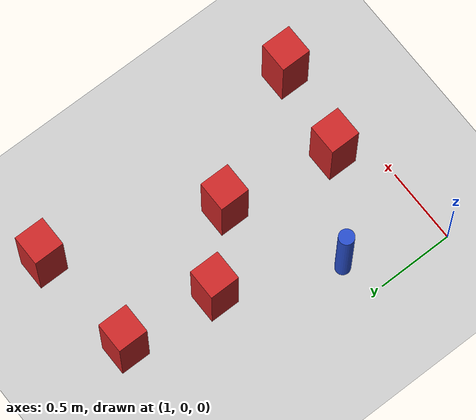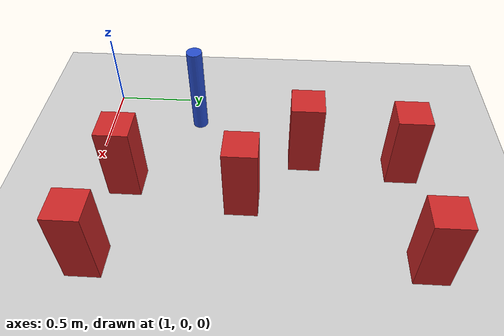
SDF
<sdf version="1.6">
 <world name="default">
  <model name="ground_plane">
   <static>1</static>
   <link name="link">
    <collision name="collision">
     <geometry><plane><normal>0 0 1</normal><size>100 100</size></plane></geometry>
     <surface><friction><ode><mu>100</mu><mu2>50</mu2></ode></friction></surface>
    </collision>
    <visual name="visual">
     <cast_shadows>0</cast_shadows>
     <geometry><plane><normal>0 0 1</normal><size>100 100</size></plane></geometry>
     <material>
      <ambient>1.0 1.0 1.0 1.0</ambient>
      <diffuse>0.8 0.8 0.8 1.0</diffuse>
      <specular>0.01 0.01 0.01 1.000000</specular>
     </material>
    </visual>
   </link>
  </model>
  <model name="square_post_obstacle41">
   <static>true</static>
   <pose>1.93724850079 0.960109891192 8.22691968438e-08 7.2212513382e-06 -7.54495500217e-07 2.29674213826e-05</pose>
   <link name="link">
    <pose>0 0 0.25 0 -0 0</pose>
    <inertial>
     <mass>100</mass>
     <inertia>
      <ixx>0.166667</ixx>
      <ixy>0</ixy>
      <ixz>0</ixz>
      <iyy>0.166667</iyy>
      <iyz>0</iyz>
      <izz>0.166667</izz>
     </inertia>
    </inertial>
    <collision name="collision"><geometry><box><size>.2 .2 .5</size></box></geometry></collision>
    <visual name="visual">
     <geometry><box><size>.2 .2 .5</size></box></geometry>
     <material>
      <script><name>Gazebo/Red</name><uri>file://media/materials/scripts/gazebo.material</uri></script>
     </material>
    </visual>
   </link>
  </model>
  <model name="pole_obstacle80">
   <static>true</static>
   <pose>1.23912340645 0.612406813624 2.88873142074e-08 -9.90536689692e-09 4.60219948993e-07 -1.20965994958e-07</pose>
   <link name="link">
    <pose>0 0 0.3 0 -0 0</pose>
    <inertial>
     <mass>1</mass>
     <inertia><ixx>0.145833</ixx><ixy>0</ixy><ixz>0</ixz><iyy>0.145833</iyy><iyz>0</iyz><izz>0.125</izz></inertia>
    </inertial>
    <collision name="collision">
     <geometry><cylinder><radius>0.05</radius><length>.6</length></cylinder></geometry>
    </collision>
    <visual name="visual">
     <geometry><cylinder><radius>0.05</radius><length>.6</length></cylinder></geometry>
     <material>
      <script><name>Gazebo/Blue</name><uri>file://media/materials/scripts/gazebo.material</uri></script>
     </material>
    </visual>
   </link>
  </model>
  <model name="square_post_obstacle138">
   <static>true</static>
   <pose>2.39888275156 0.139164505341 8.22691968438e-08 7.2212513382e-06 -7.54495500217e-07 2.29674213826e-05</pose>
   <link name="link">
    <pose>0 0 0.25 0 -0 0</pose>
    <inertial>
     <mass>100</mass>
     <inertia>
      <ixx>0.166667</ixx>
      <ixy>0</ixy>
      <ixz>0</ixz>
      <iyy>0.166667</iyy>
      <iyz>0</iyz>
      <izz>0.166667</izz>
     </inertia>
    </inertial>
    <collision name="collision"><geometry><box><size>.2 .2 .5</size></box></geometry></collision>
    <visual name="visual">
     <geometry><box><size>.2 .2 .5</size></box></geometry>
     <material>
      <script><name>Gazebo/Red</name><uri>file://media/materials/scripts/gazebo.material</uri></script>
     </material>
    </visual>
   </link>
  </model>
  <model name="square_post_obstacle158">
   <static>true</static>
   <pose>2.33921286921 2.01029641983 8.22691968438e-08 7.2212513382e-06 -7.54495500217e-07 2.29674213826e-05</pose>
   <link name="link">
    <pose>0 0 0.25 0 -0 0</pose>
    <inertial>
     <mass>100</mass>
     <inertia>
      <ixx>0.166667</ixx>
      <ixy>0</ixy>
      <ixz>0</ixz>
      <iyy>0.166667</iyy>
      <iyz>0</iyz>
      <izz>0.166667</izz>
     </inertia>
    </inertial>
    <collision name="collision"><geometry><box><size>.2 .2 .5</size></box></geometry></collision>
    <visual name="visual">
     <geometry><box><size>.2 .2 .5</size></box></geometry>
     <material>
      <script><name>Gazebo/Red</name><uri>file://media/materials/scripts/gazebo.material</uri></script>
     </material>
    </visual>
   </link>
  </model>
  <model name="square_post_obstacle176">
   <static>true</static>
   <pose>1.62308425281 1.94392637985 8.22691968438e-08 7.2212513382e-06 -7.54495500217e-07 2.29674213826e-05</pose>
   <link name="link">
    <pose>0 0 0.25 0 -0 0</pose>
    <inertial>
     <mass>100</mass>
     <inertia>
      <ixx>0.166667</ixx>
      <ixy>0</ixy>
      <ixz>0</ixz>
      <iyy>0.166667</iyy>
      <iyz>0</iyz>
      <izz>0.166667</izz>
     </inertia>
    </inertial>
    <collision name="collision"><geometry><box><size>.2 .2 .5</size></box></geometry></collision>
    <visual name="visual">
     <geometry><box><size>.2 .2 .5</size></box></geometry>
     <material>
      <script><name>Gazebo/Red</name><uri>file://media/materials/scripts/gazebo.material</uri></script>
     </material>
    </visual>
   </link>
  </model>
  <model name="square_post_obstacle204">
   <static>true</static>
   <pose>1.8156356648 0.232171752756 8.22691968438e-08 7.22125133819e-06 -7.54495500217e-07 2.29674213826e-05</pose>
   <link name="link">
    <pose>0 0 0.25 0 -0 0</pose>
    <inertial>
     <mass>100</mass>
     <inertia>
      <ixx>0.166667</ixx>
      <ixy>0</ixy>
      <ixz>0</ixz>
      <iyy>0.166667</iyy>
      <iyz>0</iyz>
      <izz>0.166667</izz>
     </inertia>
    </inertial>
    <collision name="collision"><geometry><box><size>.2 .2 .5</size></box></geometry></collision>
    <visual name="visual">
     <geometry><box><size>.2 .2 .5</size></box></geometry>
     <material>
      <script><name>Gazebo/Red</name><uri>file://media/materials/scripts/gazebo.material</uri></script>
     </material>
    </visual>
   </link>
  </model>
  <model name="square_post_obstacle249">
   <static>true</static>
   <pose>1.55144003262 1.33428996466 8.22691968438e-08 7.22125133819e-06 -7.54495500217e-07 2.29674213826e-05</pose>
   <link name="link">
    <pose>0 0 0.25 0 -0 0</pose>
    <inertial>
     <mass>100</mass>
     <inertia>
      <ixx>0.166667</ixx>
      <ixy>0</ixy>
      <ixz>0</ixz>
      <iyy>0.166667</iyy>
      <iyz>0</iyz>
      <izz>0.166667</izz>
     </inertia>
    </inertial>
    <collision name="collision"><geometry><box><size>.2 .2 .5</size></box></geometry></collision>
    <visual name="visual">
     <geometry><box><size>.2 .2 .5</size></box></geometry>
     <material>
      <script><name>Gazebo/Red</name><uri>file://media/materials/scripts/gazebo.material</uri></script>
     </material>
    </visual>
   </link>
  </model>
 </world>
</sdf>
